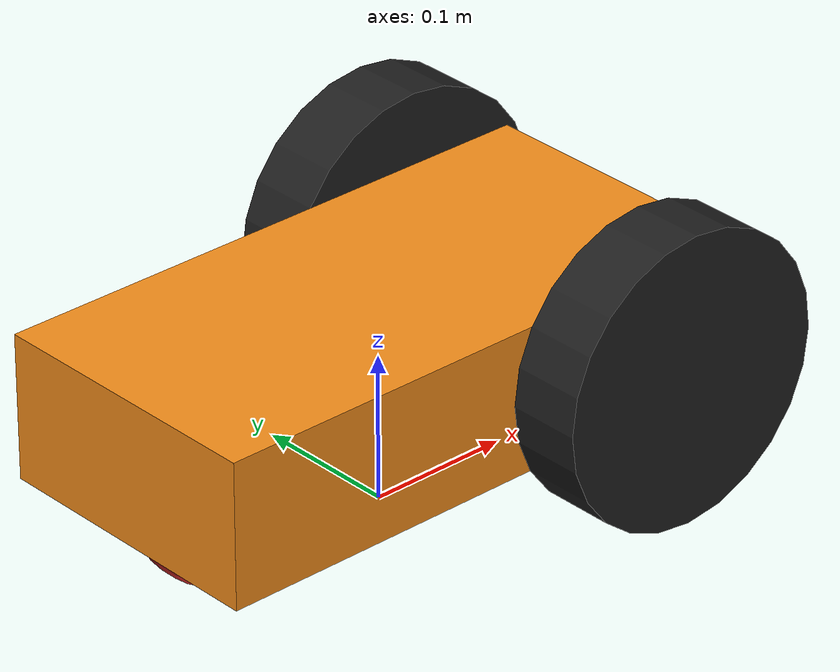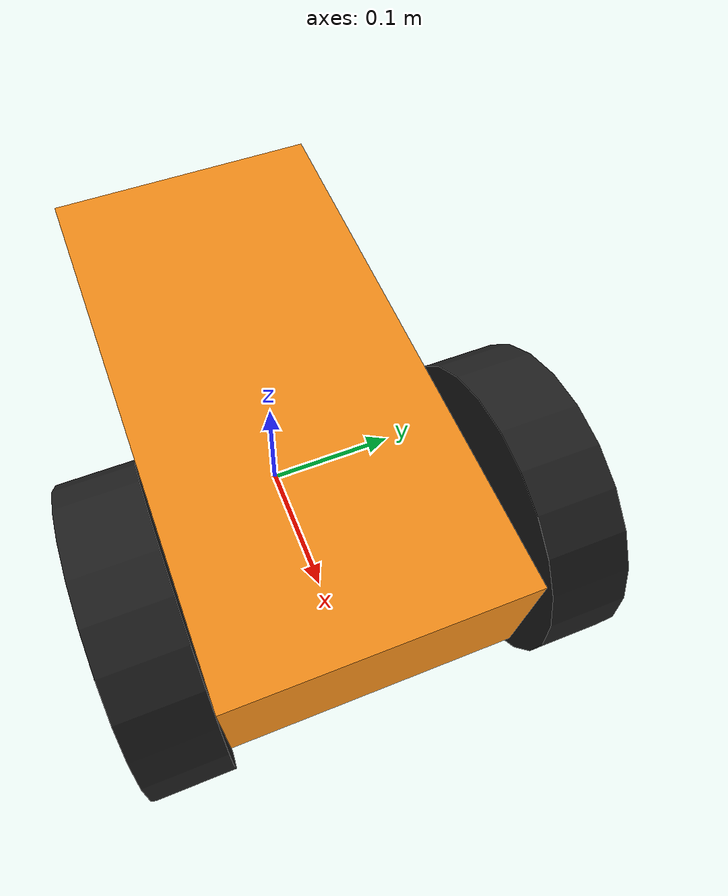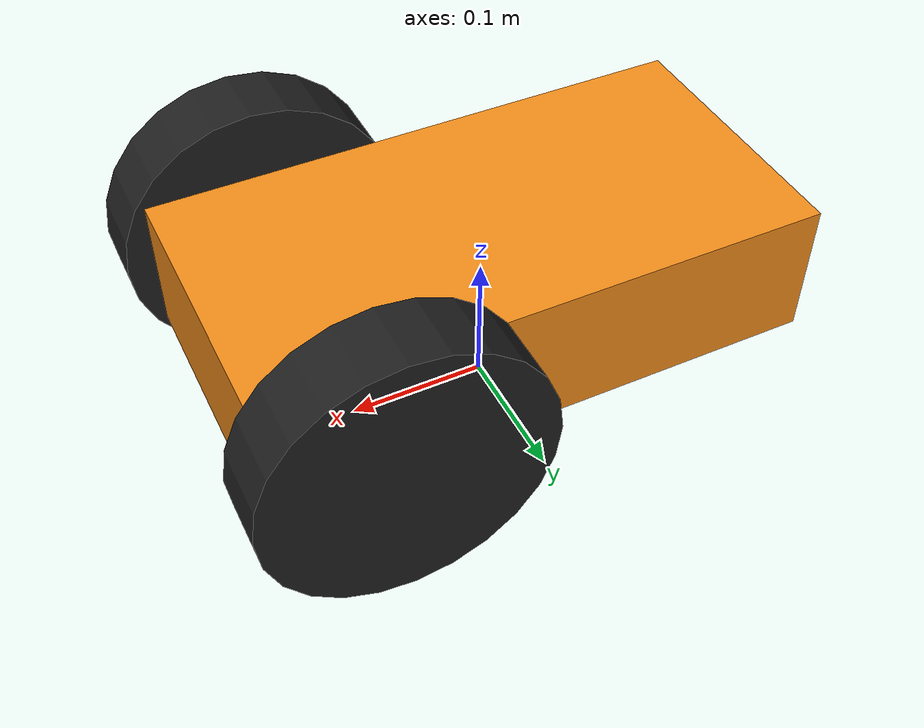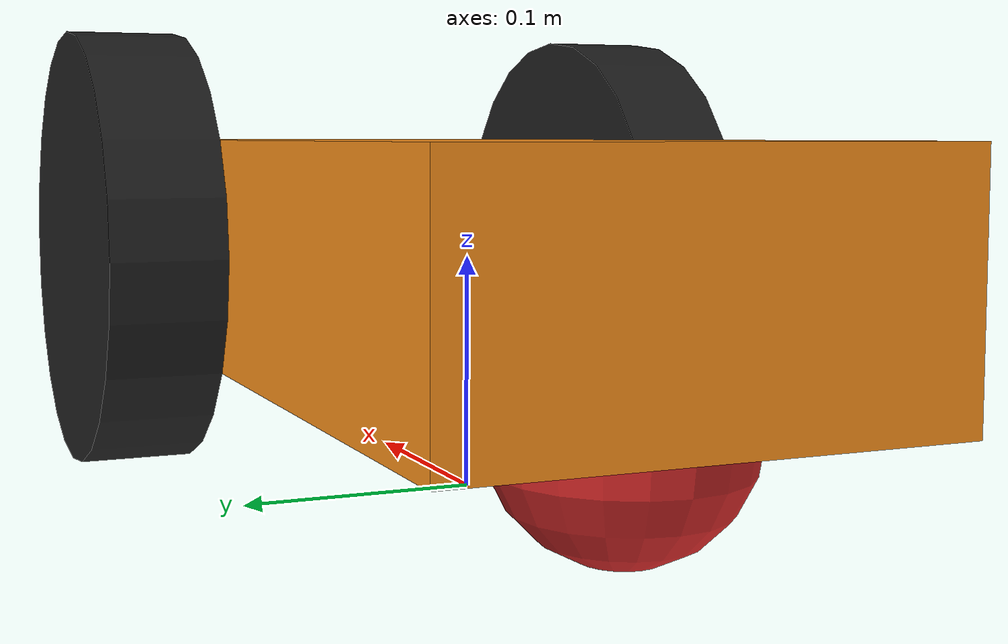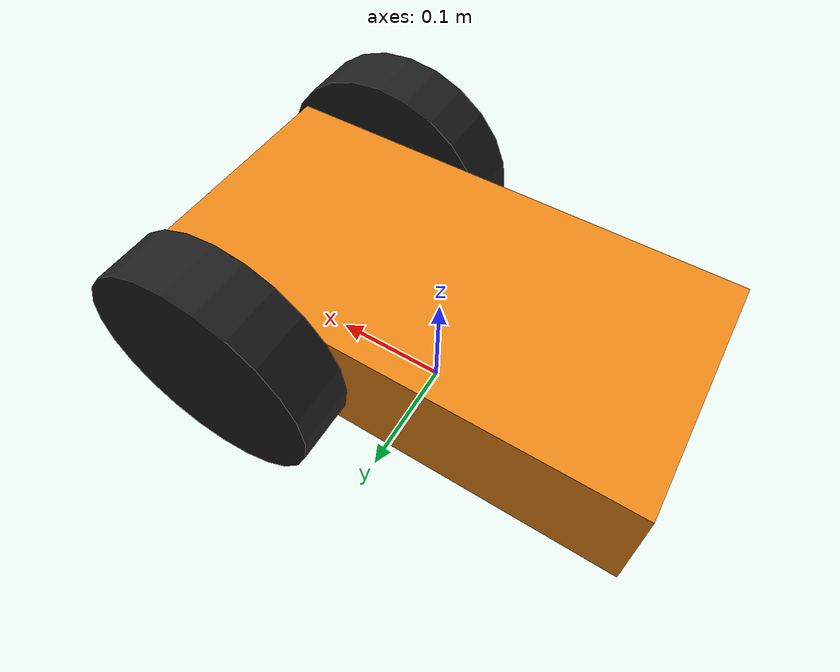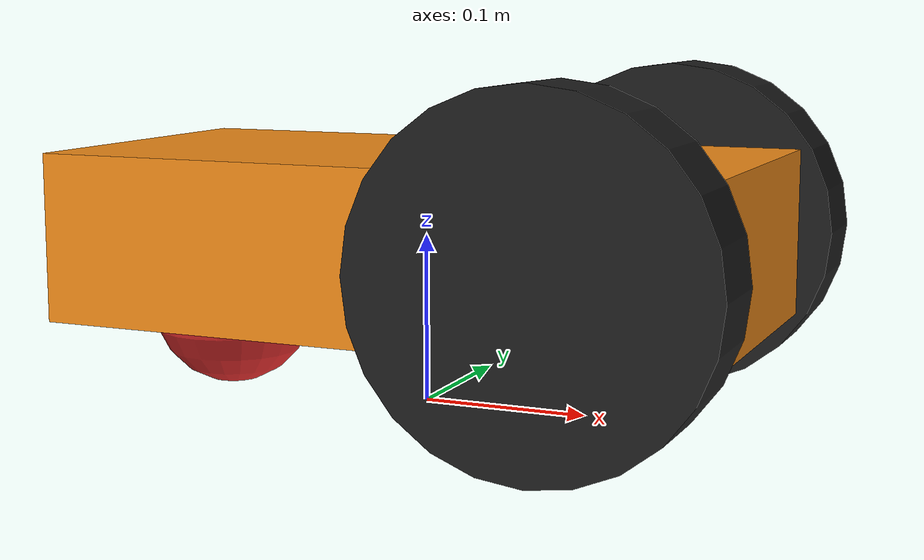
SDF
<?xml version="1.0" ?>
<!-- |    This document was autogenerated by xacro from model.sdf.xacro                | -->
<!-- |    EDITING THIS FILE BY HAND IS NOT RECOMMENDED                                 | -->
<sdf version="1.4">
  <model name="mobot" xmlns:xacro="http://www.ros.org/wiki/xacro">
    <static>True</static>
    <link name="chassis">
      <pose>0 0 0.1 0 0 0</pose>
      <collision name="collision">
        <geometry>
          <box>
            <size>0.4 0.2 0.1</size>
          </box>
        </geometry>
      </collision>
      <visual name="visual">
        <geometry>
          <box>
            <size>0.4 0.2 0.1</size>
          </box>
        </geometry>
        <material>
          <script>
            <name>Gazebo/Orange</name>
            <uri>__default__</uri>
          </script>
        </material>
      </visual>
      <inertial>
        <mass>50</mass>
        <inertia>
          <ixx>0.208333333333</ixx>
          <iyy>0.708333333333</iyy>
          <izz>0.833333333333</izz>
          <ixy>0</ixy>
          <ixz>0</ixz>
          <iyz>0</iyz>
        </inertia>
      </inertial>
      <collision name="caster_collision">
        <pose>-0.133333333333 0 -0.05 0 0 0</pose>
        <geometry>
          <sphere>
            <radius>0.05</radius>
          </sphere>
        </geometry>
        <surface>
          <friction>
            <ode>
              <mu>0</mu>
              <mu2>0</mu2>
              <slip1>1.0</slip1>
              <slip2>1.0</slip2>
            </ode>
          </friction>
        </surface>
      </collision>
      <visual name="caster_visual">
        <pose>-0.133333333333 0 -0.05 0 0 0</pose>
        <geometry>
          <sphere>
            <radius>0.05</radius>
          </sphere>
        </geometry>
        <material>
          <script>
            <name>Gazebo/Red</name>
            <uri>__default__</uri>
          </script>
        </material>
      </visual>
    </link>
    <link name="left_wheel">
      <pose>0.12 0.125 0.1 0 1.57079632679 1.57079632679</pose>
      <collision name="left_wheel_collision">
        <geometry>
          <cylinder>
            <radius>0.1</radius>
            <length>0.05</length>
          </cylinder>
        </geometry>
        <surface>
          <friction>
            <ode>
              <mu>1.0</mu>
              <mu2>1.0</mu2>
              <slip1>0.0</slip1>
              <slip2>0.0</slip2>
            </ode>
          </friction>
        </surface>
      </collision>
      <visual name="left_wheel_visual">
        <geometry>
          <cylinder>
            <radius>0.1</radius>
            <length>0.05</length>
          </cylinder>
        </geometry>
        <material>
          <script>
            <name>Gazebo/Black</name>
            <uri>__default__</uri>
          </script>
        </material>
      </visual>
      <inertial>
        <mass>5</mass>
        <inertia>
          <ixx>0.0135416666667</ixx>
          <iyy>0.0135416666667</iyy>
          <izz>0.025</izz>
          <ixy>0</ixy>
          <ixz>0</ixz>
          <iyz>0</iyz>
        </inertia>
      </inertial>
    </link>
    <joint name="left_wheel_hinge" type="revolute">
      <parent>chassis</parent>
      <child>left_wheel</child>
      <pose>0 0 0.025 0 0 0</pose>
      <axis>
        <xyz>0 1 0</xyz>
        <dynamics>
          <damping>1</damping>
        </dynamics>
        <limit>
          <effort>100</effort>
          <velocity>100</velocity>
        </limit>
      </axis>
    </joint>
    <link name="right_wheel">
      <pose>0.12 -0.125 0.1 0 1.57079632679 1.57079632679</pose>
      <collision name="right_wheel_collision">
        <geometry>
          <cylinder>
            <radius>0.1</radius>
            <length>0.05</length>
          </cylinder>
        </geometry>
        <surface>
          <friction>
            <ode>
              <mu>1.0</mu>
              <mu2>1.0</mu2>
              <slip1>0.0</slip1>
              <slip2>0.0</slip2>
            </ode>
          </friction>
        </surface>
      </collision>
      <visual name="right_wheel_visual">
        <geometry>
          <cylinder>
            <radius>0.1</radius>
            <length>0.05</length>
          </cylinder>
        </geometry>
        <material>
          <script>
            <name>Gazebo/Black</name>
            <uri>__default__</uri>
          </script>
        </material>
      </visual>
      <inertial>
        <mass>5</mass>
        <inertia>
          <ixx>0.0135416666667</ixx>
          <iyy>0.0135416666667</iyy>
          <izz>0.025</izz>
          <ixy>0</ixy>
          <ixz>0</ixz>
          <iyz>0</iyz>
        </inertia>
      </inertial>
    </link>
    <joint name="right_wheel_hinge" type="revolute">
      <parent>chassis</parent>
      <child>right_wheel</child>
      <pose>0 0 0.025 0 0 0</pose>
      <axis>
        <xyz>0 1 0</xyz>
        <dynamics>
          <damping>1</damping>
        </dynamics>
        <limit>
          <effort>100</effort>
          <velocity>100</velocity>
        </limit>
      </axis>
    </joint>

    <joint name="camera_joint" type="revolute">
      <child>camera_link</child>
      <parent>chassis</parent>
      <axis>
        <xyz>0 0 1</xyz>
        <limit>
          <upper>0</upper>
          <lower>0</lower>
        </limit>
      </axis>
    </joint>

  </model>
</sdf>
